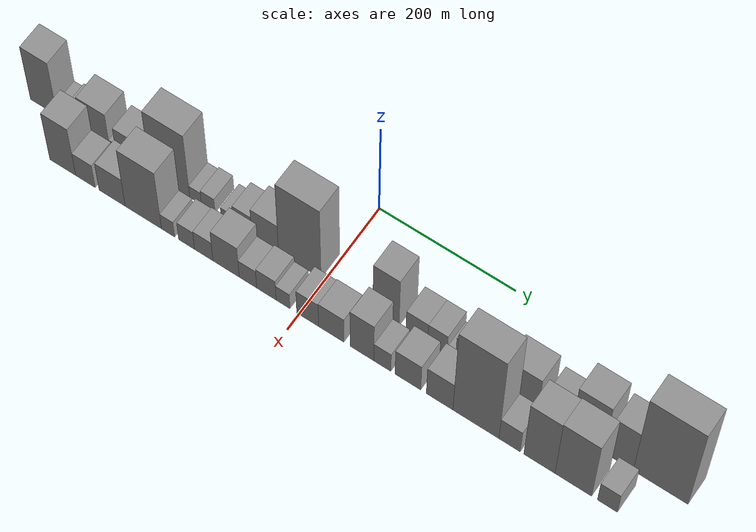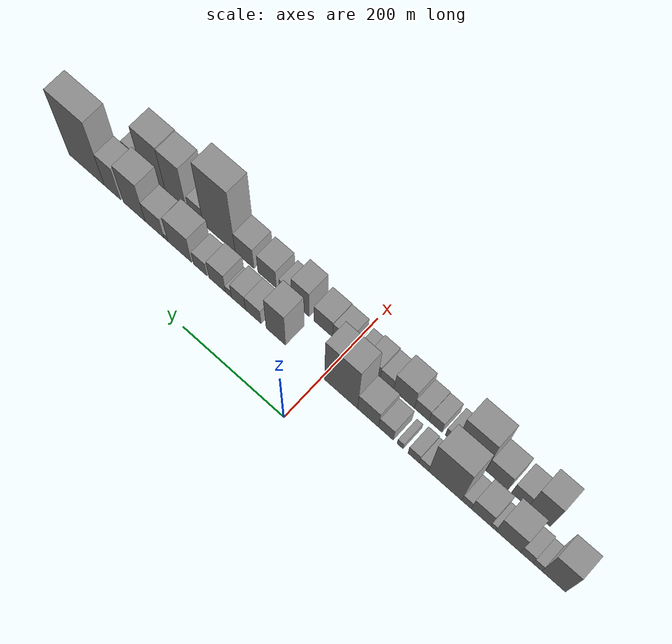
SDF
<sdf version="1.6">
 <world name="default">
  <scene>
   <sky><clouds><speed>12</speed></clouds></sky>
   <ambient>0.4 0.4 0.4 1</ambient>
   <background>0.7 0.7 0.7 1</background>
   <shadows>1</shadows>
  </scene>
  <gravity>0 0 -9.8066</gravity>
  <magnetic_field>6e-06 2.3e-05 -4.2e-05</magnetic_field>
  <physics default="0" name="default_physics" type="ode">
   <ode>
    <solver>
     <type>quick</type>
     <iters>10</iters>
     <sor>1.0</sor>
     <use_dynamic_moi_rescaling>0</use_dynamic_moi_rescaling>
    </solver>
    <constraints>
     <cfm>0</cfm>
     <erp>0.2</erp>
     <contact_max_correcting_vel>100</contact_max_correcting_vel>
     <contact_surface_layer>0.001</contact_surface_layer>
    </constraints>
   </ode>
   <max_step_size>0.004</max_step_size>
   <real_time_factor>1</real_time_factor>
   <real_time_update_rate>250</real_time_update_rate>
  </physics>
  <light name="sun" type="directional">
   <pose>0 0 10 0 0 0</pose>
   <diffuse>0.8 0.8 0.8 1</diffuse>
   <specular>0.2 0.2 0.2 1</specular>
   <attenuation>
    <range>1000</range>
    <constant>0.9</constant>
    <linear>0.01</linear>
    <quadratic>0.001</quadratic>
   </attenuation>
   <direction>-0.5 0.1 -0.9</direction>
  </light>
  <model name="building_1">
   <static>1</static>
   <pose>100.0000 -429.0224 0 0.000000 0.000000 0.000000</pose>
   <link name="link">
    <pose>0 0 64.50 0 0 0</pose>
    <collision name="collision"><geometry><box><size>40.0000 41.9551 129.0000</size></box></geometry></collision>
    <visual name="visual">
     <cast_shadows>0</cast_shadows>
     <geometry><box><size>40.0000 41.9551 129.0000</size></box></geometry>
     <material>
      <script>
       <uri>model://grey_wall/materials/scripts</uri>
       <uri>model://grey_wall/materials/textures</uri>
       <name>vrc/grey_wall</name>
      </script>
     </material>
    </visual>
   </link>
  </model>
  <model name="building_2">
   <static>1</static>
   <pose>100.0000 -399.9139 0 0.000000 0.000000 0.000000</pose>
   <link name="link">
    <pose>0 0 15.00 0 0 0</pose>
    <collision name="collision"><geometry><box><size>40.0000 16.2620 30.0000</size></box></geometry></collision>
    <visual name="visual">
     <cast_shadows>0</cast_shadows>
     <geometry><box><size>40.0000 16.2620 30.0000</size></box></geometry>
     <material>
      <script>
       <uri>model://grey_wall/materials/scripts</uri>
       <uri>model://grey_wall/materials/textures</uri>
       <name>vrc/grey_wall</name>
      </script>
     </material>
    </visual>
   </link>
  </model>
  <model name="building_3">
   <static>1</static>
   <pose>100.0000 -380.9201 0 0.000000 0.000000 0.000000</pose>
   <link name="link">
    <pose>0 0 19.50 0 0 0</pose>
    <collision name="collision"><geometry><box><size>40.0000 21.7257 39.0000</size></box></geometry></collision>
    <visual name="visual">
     <cast_shadows>0</cast_shadows>
     <geometry><box><size>40.0000 21.7257 39.0000</size></box></geometry>
     <material>
      <script>
       <uri>model://grey_wall/materials/scripts</uri>
       <uri>model://grey_wall/materials/textures</uri>
       <name>vrc/grey_wall</name>
      </script>
     </material>
    </visual>
   </link>
  </model>
  <model name="building_4">
   <static>1</static>
   <pose>100.0000 -347.9478 0 0.000000 0.000000 0.000000</pose>
   <link name="link">
    <pose>0 0 42.00 0 0 0</pose>
    <collision name="collision"><geometry><box><size>40.0000 44.2188 84.0000</size></box></geometry></collision>
    <visual name="visual">
     <cast_shadows>0</cast_shadows>
     <geometry><box><size>40.0000 44.2188 84.0000</size></box></geometry>
     <material>
      <script>
       <uri>model://grey_wall/materials/scripts</uri>
       <uri>model://grey_wall/materials/textures</uri>
       <name>vrc/grey_wall</name>
      </script>
     </material>
    </visual>
   </link>
  </model>
  <model name="building_5">
   <static>1</static>
   <pose>100.0000 -321.0881 0 0.000000 0.000000 0.000000</pose>
   <link name="link">
    <pose>0 0 10.50 0 0 0</pose>
    <collision name="collision"><geometry><box><size>40.0000 9.5005 21.0000</size></box></geometry></collision>
    <visual name="visual">
     <cast_shadows>0</cast_shadows>
     <geometry><box><size>40.0000 9.5005 21.0000</size></box></geometry>
     <material>
      <script>
       <uri>model://grey_wall/materials/scripts</uri>
       <uri>model://grey_wall/materials/textures</uri>
       <name>vrc/grey_wall</name>
      </script>
     </material>
    </visual>
   </link>
  </model>
  <model name="building_6">
   <static>1</static>
   <pose>100.0000 -298.5187 0 0.000000 0.000000 0.000000</pose>
   <link name="link">
    <pose>0 0 30.00 0 0 0</pose>
    <collision name="collision"><geometry><box><size>40.0000 35.6383 60.0000</size></box></geometry></collision>
    <visual name="visual">
     <cast_shadows>0</cast_shadows>
     <geometry><box><size>40.0000 35.6383 60.0000</size></box></geometry>
     <material>
      <script>
       <uri>model://grey_wall/materials/scripts</uri>
       <uri>model://grey_wall/materials/textures</uri>
       <name>vrc/grey_wall</name>
      </script>
     </material>
    </visual>
   </link>
  </model>
  <model name="building_7">
   <static>1</static>
   <pose>100.0000 -272.0576 0 0.000000 0.000000 0.000000</pose>
   <link name="link">
    <pose>0 0 16.50 0 0 0</pose>
    <collision name="collision"><geometry><box><size>40.0000 17.2840 33.0000</size></box></geometry></collision>
    <visual name="visual">
     <cast_shadows>0</cast_shadows>
     <geometry><box><size>40.0000 17.2840 33.0000</size></box></geometry>
     <material>
      <script>
       <uri>model://grey_wall/materials/scripts</uri>
       <uri>model://grey_wall/materials/textures</uri>
       <name>vrc/grey_wall</name>
      </script>
     </material>
    </visual>
   </link>
  </model>
  <model name="building_8">
   <static>1</static>
   <pose>100.0000 -233.0441 0 0.000000 0.000000 0.000000</pose>
   <link name="link">
    <pose>0 0 78.00 0 0 0</pose>
    <collision name="collision"><geometry><box><size>40.0000 60.7430 156.0000</size></box></geometry></collision>
    <visual name="visual">
     <cast_shadows>0</cast_shadows>
     <geometry><box><size>40.0000 60.7430 156.0000</size></box></geometry>
     <material>
      <script>
       <uri>model://grey_wall/materials/scripts</uri>
       <uri>model://grey_wall/materials/textures</uri>
       <name>vrc/grey_wall</name>
      </script>
     </material>
    </visual>
   </link>
  </model>
  <model name="building_9">
   <static>1</static>
   <pose>100.0000 -193.7756 0 0.000000 0.000000 0.000000</pose>
   <link name="link">
    <pose>0 0 15.00 0 0 0</pose>
    <collision name="collision"><geometry><box><size>40.0000 17.7942 30.0000</size></box></geometry></collision>
    <visual name="visual">
     <cast_shadows>0</cast_shadows>
     <geometry><box><size>40.0000 17.7942 30.0000</size></box></geometry>
     <material>
      <script>
       <uri>model://grey_wall/materials/scripts</uri>
       <uri>model://grey_wall/materials/textures</uri>
       <name>vrc/grey_wall</name>
      </script>
     </material>
    </visual>
   </link>
  </model>
  <model name="building_10">
   <static>1</static>
   <pose>100.0000 -174.4741 0 0.000000 0.000000 0.000000</pose>
   <link name="link">
    <pose>0 0 18.00 0 0 0</pose>
    <collision name="collision"><geometry><box><size>40.0000 20.8089 36.0000</size></box></geometry></collision>
    <visual name="visual">
     <cast_shadows>0</cast_shadows>
     <geometry><box><size>40.0000 20.8089 36.0000</size></box></geometry>
     <material>
      <script>
       <uri>model://grey_wall/materials/scripts</uri>
       <uri>model://grey_wall/materials/textures</uri>
       <name>vrc/grey_wall</name>
      </script>
     </material>
    </visual>
   </link>
  </model>
  <model name="building_11">
   <static>1</static>
   <pose>100.0000 -149.3201 0 0.000000 0.000000 0.000000</pose>
   <link name="link">
    <pose>0 0 12.00 0 0 0</pose>
    <collision name="collision"><geometry><box><size>40.0000 11.4991 24.0000</size></box></geometry></collision>
    <visual name="visual">
     <cast_shadows>0</cast_shadows>
     <geometry><box><size>40.0000 11.4991 24.0000</size></box></geometry>
     <material>
      <script>
       <uri>model://grey_wall/materials/scripts</uri>
       <uri>model://grey_wall/materials/textures</uri>
       <name>vrc/grey_wall</name>
      </script>
     </material>
    </visual>
   </link>
  </model>
  <model name="building_12">
   <static>1</static>
   <pose>100.0000 -122.6323 0 0.000000 0.000000 0.000000</pose>
   <link name="link">
    <pose>0 0 24.00 0 0 0</pose>
    <collision name="collision"><geometry><box><size>40.0000 27.8765 48.0000</size></box></geometry></collision>
    <visual name="visual">
     <cast_shadows>0</cast_shadows>
     <geometry><box><size>40.0000 27.8765 48.0000</size></box></geometry>
     <material>
      <script>
       <uri>model://grey_wall/materials/scripts</uri>
       <uri>model://grey_wall/materials/textures</uri>
       <name>vrc/grey_wall</name>
      </script>
     </material>
    </visual>
   </link>
  </model>
  <model name="building_13">
   <static>1</static>
   <pose>100.0000 -88.6389 0 0.000000 0.000000 0.000000</pose>
   <link name="link">
    <pose>0 0 34.50 0 0 0</pose>
    <collision name="collision"><geometry><box><size>40.0000 40.1102 69.0000</size></box></geometry></collision>
    <visual name="visual">
     <cast_shadows>0</cast_shadows>
     <geometry><box><size>40.0000 40.1102 69.0000</size></box></geometry>
     <material>
      <script>
       <uri>model://grey_wall/materials/scripts</uri>
       <uri>model://grey_wall/materials/textures</uri>
       <name>vrc/grey_wall</name>
      </script>
     </material>
    </visual>
   </link>
  </model>
  <model name="building_14">
   <static>1</static>
   <pose>100.0000 -36.8613 0 0.000000 0.000000 0.000000</pose>
   <link name="link">
    <pose>0 0 88.50 0 0 0</pose>
    <collision name="collision"><geometry><box><size>40.0000 63.4450 177.0000</size></box></geometry></collision>
    <visual name="visual">
     <cast_shadows>0</cast_shadows>
     <geometry><box><size>40.0000 63.4450 177.0000</size></box></geometry>
     <material>
      <script>
       <uri>model://grey_wall/materials/scripts</uri>
       <uri>model://grey_wall/materials/textures</uri>
       <name>vrc/grey_wall</name>
      </script>
     </material>
    </visual>
   </link>
  </model>
  <model name="building_15">
   <static>1</static>
   <pose>100.0000 90.2262 0 0.000000 0.000000 0.000000</pose>
   <link name="link">
    <pose>0 0 61.50 0 0 0</pose>
    <collision name="collision"><geometry><box><size>40.0000 38.2434 123.0000</size></box></geometry></collision>
    <visual name="visual">
     <cast_shadows>0</cast_shadows>
     <geometry><box><size>40.0000 38.2434 123.0000</size></box></geometry>
     <material>
      <script>
       <uri>model://grey_wall/materials/scripts</uri>
       <uri>model://grey_wall/materials/textures</uri>
       <name>vrc/grey_wall</name>
      </script>
     </material>
    </visual>
   </link>
  </model>
  <model name="building_16">
   <static>1</static>
   <pose>100.0000 135.0718 0 0.000000 0.000000 0.000000</pose>
   <link name="link">
    <pose>0 0 27.00 0 0 0</pose>
    <collision name="collision"><geometry><box><size>40.0000 31.4479 54.0000</size></box></geometry></collision>
    <visual name="visual">
     <cast_shadows>0</cast_shadows>
     <geometry><box><size>40.0000 31.4479 54.0000</size></box></geometry>
     <material>
      <script>
       <uri>model://grey_wall/materials/scripts</uri>
       <uri>model://grey_wall/materials/textures</uri>
       <name>vrc/grey_wall</name>
      </script>
     </material>
    </visual>
   </link>
  </model>
  <model name="building_17">
   <static>1</static>
   <pose>100.0000 164.8113 0 0.000000 0.000000 0.000000</pose>
   <link name="link">
    <pose>0 0 27.00 0 0 0</pose>
    <collision name="collision"><geometry><box><size>40.0000 28.0310 54.0000</size></box></geometry></collision>
    <visual name="visual">
     <cast_shadows>0</cast_shadows>
     <geometry><box><size>40.0000 28.0310 54.0000</size></box></geometry>
     <material>
      <script>
       <uri>model://grey_wall/materials/scripts</uri>
       <uri>model://grey_wall/materials/textures</uri>
       <name>vrc/grey_wall</name>
      </script>
     </material>
    </visual>
   </link>
  </model>
  <model name="building_18">
   <static>1</static>
   <pose>100.0000 184.7868 0 0.000000 0.000000 0.000000</pose>
   <link name="link">
    <pose>0 0 13.50 0 0 0</pose>
    <collision name="collision"><geometry><box><size>40.0000 11.9201 27.0000</size></box></geometry></collision>
    <visual name="visual">
     <cast_shadows>0</cast_shadows>
     <geometry><box><size>40.0000 11.9201 27.0000</size></box></geometry>
     <material>
      <script>
       <uri>model://grey_wall/materials/scripts</uri>
       <uri>model://grey_wall/materials/textures</uri>
       <name>vrc/grey_wall</name>
      </script>
     </material>
    </visual>
   </link>
  </model>
  <model name="building_19">
   <static>1</static>
   <pose>100.0000 207.5900 0 0.000000 0.000000 0.000000</pose>
   <link name="link">
    <pose>0 0 33.00 0 0 0</pose>
    <collision name="collision"><geometry><box><size>40.0000 33.6863 66.0000</size></box></geometry></collision>
    <visual name="visual">
     <cast_shadows>0</cast_shadows>
     <geometry><box><size>40.0000 33.6863 66.0000</size></box></geometry>
     <material>
      <script>
       <uri>model://grey_wall/materials/scripts</uri>
       <uri>model://grey_wall/materials/textures</uri>
       <name>vrc/grey_wall</name>
      </script>
     </material>
    </visual>
   </link>
  </model>
  <model name="building_20">
   <static>1</static>
   <pose>100.0000 242.2417 0 0.000000 0.000000 0.000000</pose>
   <link name="link">
    <pose>0 0 24.00 0 0 0</pose>
    <collision name="collision"><geometry><box><size>40.0000 27.6171 48.0000</size></box></geometry></collision>
    <visual name="visual">
     <cast_shadows>0</cast_shadows>
     <geometry><box><size>40.0000 27.6171 48.0000</size></box></geometry>
     <material>
      <script>
       <uri>model://grey_wall/materials/scripts</uri>
       <uri>model://grey_wall/materials/textures</uri>
       <name>vrc/grey_wall</name>
      </script>
     </material>
    </visual>
   </link>
  </model>
  <model name="building_21">
   <static>1</static>
   <pose>100.0000 284.5589 0 0.000000 0.000000 0.000000</pose>
   <link name="link">
    <pose>0 0 45.00 0 0 0</pose>
    <collision name="collision"><geometry><box><size>40.0000 49.0174 90.0000</size></box></geometry></collision>
    <visual name="visual">
     <cast_shadows>0</cast_shadows>
     <geometry><box><size>40.0000 49.0174 90.0000</size></box></geometry>
     <material>
      <script>
       <uri>model://grey_wall/materials/scripts</uri>
       <uri>model://grey_wall/materials/textures</uri>
       <name>vrc/grey_wall</name>
      </script>
     </material>
    </visual>
   </link>
  </model>
  <model name="building_22">
   <static>1</static>
   <pose>100.0000 313.1219 0 0.000000 0.000000 0.000000</pose>
   <link name="link">
    <pose>0 0 9.00 0 0 0</pose>
    <collision name="collision"><geometry><box><size>40.0000 8.1085 18.0000</size></box></geometry></collision>
    <visual name="visual">
     <cast_shadows>0</cast_shadows>
     <geometry><box><size>40.0000 8.1085 18.0000</size></box></geometry>
     <material>
      <script>
       <uri>model://grey_wall/materials/scripts</uri>
       <uri>model://grey_wall/materials/textures</uri>
       <name>vrc/grey_wall</name>
      </script>
     </material>
    </visual>
   </link>
  </model>
  <model name="building_23">
   <static>1</static>
   <pose>100.0000 336.5425 0 0.000000 0.000000 0.000000</pose>
   <link name="link">
    <pose>0 0 34.50 0 0 0</pose>
    <collision name="collision"><geometry><box><size>40.0000 38.7327 69.0000</size></box></geometry></collision>
    <visual name="visual">
     <cast_shadows>0</cast_shadows>
     <geometry><box><size>40.0000 38.7327 69.0000</size></box></geometry>
     <material>
      <script>
       <uri>model://grey_wall/materials/scripts</uri>
       <uri>model://grey_wall/materials/textures</uri>
       <name>vrc/grey_wall</name>
      </script>
     </material>
    </visual>
   </link>
  </model>
  <model name="building_24">
   <static>1</static>
   <pose>100.0000 378.7591 0 0.000000 0.000000 0.000000</pose>
   <link name="link">
    <pose>0 0 64.50 0 0 0</pose>
    <collision name="collision"><geometry><box><size>40.0000 45.7005 129.0000</size></box></geometry></collision>
    <visual name="visual">
     <cast_shadows>0</cast_shadows>
     <geometry><box><size>40.0000 45.7005 129.0000</size></box></geometry>
     <material>
      <script>
       <uri>model://grey_wall/materials/scripts</uri>
       <uri>model://grey_wall/materials/textures</uri>
       <name>vrc/grey_wall</name>
      </script>
     </material>
    </visual>
   </link>
  </model>
  <model name="building_25">
   <static>1</static>
   <pose>100.0000 424.7427 0 0.000000 0.000000 0.000000</pose>
   <link name="link">
    <pose>0 0 54.00 0 0 0</pose>
    <collision name="collision"><geometry><box><size>40.0000 34.2668 108.0000</size></box></geometry></collision>
    <visual name="visual">
     <cast_shadows>0</cast_shadows>
     <geometry><box><size>40.0000 34.2668 108.0000</size></box></geometry>
     <material>
      <script>
       <uri>model://grey_wall/materials/scripts</uri>
       <uri>model://grey_wall/materials/textures</uri>
       <name>vrc/grey_wall</name>
      </script>
     </material>
    </visual>
   </link>
  </model>
  <model name="building_26">
   <static>1</static>
   <pose>100.0000 479.6796 0 0.000000 0.000000 0.000000</pose>
   <link name="link">
    <pose>0 0 103.50 0 0 0</pose>
    <collision name="collision"><geometry><box><size>40.0000 75.6070 207.0000</size></box></geometry></collision>
    <visual name="visual">
     <cast_shadows>0</cast_shadows>
     <geometry><box><size>40.0000 75.6070 207.0000</size></box></geometry>
     <material>
      <script>
       <uri>model://grey_wall/materials/scripts</uri>
       <uri>model://grey_wall/materials/textures</uri>
       <name>vrc/grey_wall</name>
      </script>
     </material>
    </visual>
   </link>
  </model>
  <model name="building_27">
   <static>1</static>
   <pose>155.0000 -357.7235 0 0.000000 0.000000 0.000000</pose>
   <link name="link">
    <pose>0 0 58.50 0 0 0</pose>
    <collision name="collision"><geometry><box><size>40.0000 40.1843 117.0000</size></box></geometry></collision>
    <visual name="visual">
     <cast_shadows>0</cast_shadows>
     <geometry><box><size>40.0000 40.1843 117.0000</size></box></geometry>
     <material>
      <script>
       <uri>model://grey_wall/materials/scripts</uri>
       <uri>model://grey_wall/materials/textures</uri>
       <name>vrc/grey_wall</name>
      </script>
     </material>
    </visual>
   </link>
  </model>
  <model name="building_28">
   <static>1</static>
   <pose>155.0000 -322.5535 0 0.000000 0.000000 0.000000</pose>
   <link name="link">
    <pose>0 0 28.50 0 0 0</pose>
    <collision name="collision"><geometry><box><size>40.0000 30.1557 57.0000</size></box></geometry></collision>
    <visual name="visual">
     <cast_shadows>0</cast_shadows>
     <geometry><box><size>40.0000 30.1557 57.0000</size></box></geometry>
     <material>
      <script>
       <uri>model://grey_wall/materials/scripts</uri>
       <uri>model://grey_wall/materials/textures</uri>
       <name>vrc/grey_wall</name>
      </script>
     </material>
    </visual>
   </link>
  </model>
  <model name="building_29">
   <static>1</static>
   <pose>155.0000 -281.3370 0 0.000000 0.000000 0.000000</pose>
   <link name="link">
    <pose>0 0 34.50 0 0 0</pose>
    <collision name="collision"><geometry><box><size>40.0000 40.2775 69.0000</size></box></geometry></collision>
    <visual name="visual">
     <cast_shadows>0</cast_shadows>
     <geometry><box><size>40.0000 40.2775 69.0000</size></box></geometry>
     <material>
      <script>
       <uri>model://grey_wall/materials/scripts</uri>
       <uri>model://grey_wall/materials/textures</uri>
       <name>vrc/grey_wall</name>
      </script>
     </material>
    </visual>
   </link>
  </model>
  <model name="building_30">
   <static>1</static>
   <pose>155.0000 -233.5182 0 0.000000 0.000000 0.000000</pose>
   <link name="link">
    <pose>0 0 72.00 0 0 0</pose>
    <collision name="collision"><geometry><box><size>40.0000 55.3600 144.0000</size></box></geometry></collision>
    <visual name="visual">
     <cast_shadows>0</cast_shadows>
     <geometry><box><size>40.0000 55.3600 144.0000</size></box></geometry>
     <material>
      <script>
       <uri>model://grey_wall/materials/scripts</uri>
       <uri>model://grey_wall/materials/textures</uri>
       <name>vrc/grey_wall</name>
      </script>
     </material>
    </visual>
   </link>
  </model>
  <model name="building_31">
   <static>1</static>
   <pose>155.0000 -195.7968 0 0.000000 0.000000 0.000000</pose>
   <link name="link">
    <pose>0 0 19.50 0 0 0</pose>
    <collision name="collision"><geometry><box><size>40.0000 20.0828 39.0000</size></box></geometry></collision>
    <visual name="visual">
     <cast_shadows>0</cast_shadows>
     <geometry><box><size>40.0000 20.0828 39.0000</size></box></geometry>
     <material>
      <script>
       <uri>model://grey_wall/materials/scripts</uri>
       <uri>model://grey_wall/materials/textures</uri>
       <name>vrc/grey_wall</name>
      </script>
     </material>
    </visual>
   </link>
  </model>
  <model name="building_32">
   <static>1</static>
   <pose>155.0000 -167.7572 0 0.000000 0.000000 0.000000</pose>
   <link name="link">
    <pose>0 0 22.50 0 0 0</pose>
    <collision name="collision"><geometry><box><size>40.0000 23.9965 45.0000</size></box></geometry></collision>
    <visual name="visual">
     <cast_shadows>0</cast_shadows>
     <geometry><box><size>40.0000 23.9965 45.0000</size></box></geometry>
     <material>
      <script>
       <uri>model://grey_wall/materials/scripts</uri>
       <uri>model://grey_wall/materials/textures</uri>
       <name>vrc/grey_wall</name>
      </script>
     </material>
    </visual>
   </link>
  </model>
  <model name="building_33">
   <static>1</static>
   <pose>155.0000 -141.8933 0 0.000000 0.000000 0.000000</pose>
   <link name="link">
    <pose>0 0 24.00 0 0 0</pose>
    <collision name="collision"><geometry><box><size>40.0000 27.7312 48.0000</size></box></geometry></collision>
    <visual name="visual">
     <cast_shadows>0</cast_shadows>
     <geometry><box><size>40.0000 27.7312 48.0000</size></box></geometry>
     <material>
      <script>
       <uri>model://grey_wall/materials/scripts</uri>
       <uri>model://grey_wall/materials/textures</uri>
       <name>vrc/grey_wall</name>
      </script>
     </material>
    </visual>
   </link>
  </model>
  <model name="building_34">
   <static>1</static>
   <pose>155.0000 -108.2997 0 0.000000 0.000000 0.000000</pose>
   <link name="link">
    <pose>0 0 39.00 0 0 0</pose>
    <collision name="collision"><geometry><box><size>40.0000 39.4560 78.0000</size></box></geometry></collision>
    <visual name="visual">
     <cast_shadows>0</cast_shadows>
     <geometry><box><size>40.0000 39.4560 78.0000</size></box></geometry>
     <material>
      <script>
       <uri>model://grey_wall/materials/scripts</uri>
       <uri>model://grey_wall/materials/textures</uri>
       <name>vrc/grey_wall</name>
      </script>
     </material>
    </visual>
   </link>
  </model>
  <model name="building_35">
   <static>1</static>
   <pose>155.0000 -75.5645 0 0.000000 0.000000 0.000000</pose>
   <link name="link">
    <pose>0 0 22.50 0 0 0</pose>
    <collision name="collision"><geometry><box><size>40.0000 26.0145 45.0000</size></box></geometry></collision>
    <visual name="visual">
     <cast_shadows>0</cast_shadows>
     <geometry><box><size>40.0000 26.0145 45.0000</size></box></geometry>
     <material>
      <script>
       <uri>model://grey_wall/materials/scripts</uri>
       <uri>model://grey_wall/materials/textures</uri>
       <name>vrc/grey_wall</name>
      </script>
     </material>
    </visual>
   </link>
  </model>
  <model name="building_36">
   <static>1</static>
   <pose>155.0000 -48.0627 0 0.000000 0.000000 0.000000</pose>
   <link name="link">
    <pose>0 0 25.50 0 0 0</pose>
    <collision name="collision"><geometry><box><size>40.0000 28.9891 51.0000</size></box></geometry></collision>
    <visual name="visual">
     <cast_shadows>0</cast_shadows>
     <geometry><box><size>40.0000 28.9891 51.0000</size></box></geometry>
     <material>
      <script>
       <uri>model://grey_wall/materials/scripts</uri>
       <uri>model://grey_wall/materials/textures</uri>
       <name>vrc/grey_wall</name>
      </script>
     </material>
    </visual>
   </link>
  </model>
  <model name="building_37">
   <static>1</static>
   <pose>155.0000 -23.3141 0 0.000000 0.000000 0.000000</pose>
   <link name="link">
    <pose>0 0 19.50 0 0 0</pose>
    <collision name="collision"><geometry><box><size>40.0000 20.5080 39.0000</size></box></geometry></collision>
    <visual name="visual">
     <cast_shadows>0</cast_shadows>
     <geometry><box><size>40.0000 20.5080 39.0000</size></box></geometry>
     <material>
      <script>
       <uri>model://grey_wall/materials/scripts</uri>
       <uri>model://grey_wall/materials/textures</uri>
       <name>vrc/grey_wall</name>
      </script>
     </material>
    </visual>
   </link>
  </model>
  <model name="building_38">
   <static>1</static>
   <pose>155.0000 13.0058 0 0.000000 0.000000 0.000000</pose>
   <link name="link">
    <pose>0 0 30.00 0 0 0</pose>
    <collision name="collision"><geometry><box><size>40.0000 32.1319 60.0000</size></box></geometry></collision>
    <visual name="visual">
     <cast_shadows>0</cast_shadows>
     <geometry><box><size>40.0000 32.1319 60.0000</size></box></geometry>
     <material>
      <script>
       <uri>model://grey_wall/materials/scripts</uri>
       <uri>model://grey_wall/materials/textures</uri>
       <name>vrc/grey_wall</name>
      </script>
     </material>
    </visual>
   </link>
  </model>
  <model name="building_39">
   <static>1</static>
   <pose>155.0000 47.6508 0 0.000000 0.000000 0.000000</pose>
   <link name="link">
    <pose>0 0 31.50 0 0 0</pose>
    <collision name="collision"><geometry><box><size>40.0000 37.1580 63.0000</size></box></geometry></collision>
    <visual name="visual">
     <cast_shadows>0</cast_shadows>
     <geometry><box><size>40.0000 37.1580 63.0000</size></box></geometry>
     <material>
      <script>
       <uri>model://grey_wall/materials/scripts</uri>
       <uri>model://grey_wall/materials/textures</uri>
       <name>vrc/grey_wall</name>
      </script>
     </material>
    </visual>
   </link>
  </model>
  <model name="building_40">
   <static>1</static>
   <pose>155.0000 92.5274 0 0.000000 0.000000 0.000000</pose>
   <link name="link">
    <pose>0 0 48.00 0 0 0</pose>
    <collision name="collision"><geometry><box><size>40.0000 34.5951 96.0000</size></box></geometry></collision>
    <visual name="visual">
     <cast_shadows>0</cast_shadows>
     <geometry><box><size>40.0000 34.5951 96.0000</size></box></geometry>
     <material>
      <script>
       <uri>model://grey_wall/materials/scripts</uri>
       <uri>model://grey_wall/materials/textures</uri>
       <name>vrc/grey_wall</name>
      </script>
     </material>
    </visual>
   </link>
  </model>
  <model name="building_41">
   <static>1</static>
   <pose>155.0000 122.1438 0 0.000000 0.000000 0.000000</pose>
   <link name="link">
    <pose>0 0 24.00 0 0 0</pose>
    <collision name="collision"><geometry><box><size>40.0000 24.6377 48.0000</size></box></geometry></collision>
    <visual name="visual">
     <cast_shadows>0</cast_shadows>
     <geometry><box><size>40.0000 24.6377 48.0000</size></box></geometry>
     <material>
      <script>
       <uri>model://grey_wall/materials/scripts</uri>
       <uri>model://grey_wall/materials/textures</uri>
       <name>vrc/grey_wall</name>
      </script>
     </material>
    </visual>
   </link>
  </model>
  <model name="building_42">
   <static>1</static>
   <pose>155.0000 158.9958 0 0.000000 0.000000 0.000000</pose>
   <link name="link">
    <pose>0 0 33.00 0 0 0</pose>
    <collision name="collision"><geometry><box><size>40.0000 37.0665 66.0000</size></box></geometry></collision>
    <visual name="visual">
     <cast_shadows>0</cast_shadows>
     <geometry><box><size>40.0000 37.0665 66.0000</size></box></geometry>
     <material>
      <script>
       <uri>model://grey_wall/materials/scripts</uri>
       <uri>model://grey_wall/materials/textures</uri>
       <name>vrc/grey_wall</name>
      </script>
     </material>
    </visual>
   </link>
  </model>
  <model name="building_43">
   <static>1</static>
   <pose>155.0000 204.5790 0 0.000000 0.000000 0.000000</pose>
   <link name="link">
    <pose>0 0 36.00 0 0 0</pose>
    <collision name="collision"><geometry><box><size>40.0000 38.0998 72.0000</size></box></geometry></collision>
    <visual name="visual">
     <cast_shadows>0</cast_shadows>
     <geometry><box><size>40.0000 38.0998 72.0000</size></box></geometry>
     <material>
      <script>
       <uri>model://grey_wall/materials/scripts</uri>
       <uri>model://grey_wall/materials/textures</uri>
       <name>vrc/grey_wall</name>
      </script>
     </material>
    </visual>
   </link>
  </model>
  <model name="building_44">
   <static>1</static>
   <pose>155.0000 256.3442 0 0.000000 0.000000 0.000000</pose>
   <link name="link">
    <pose>0 0 108.00 0 0 0</pose>
    <collision name="collision"><geometry><box><size>40.0000 65.4306 216.0000</size></box></geometry></collision>
    <visual name="visual">
     <cast_shadows>0</cast_shadows>
     <geometry><box><size>40.0000 65.4306 216.0000</size></box></geometry>
     <material>
      <script>
       <uri>model://grey_wall/materials/scripts</uri>
       <uri>model://grey_wall/materials/textures</uri>
       <name>vrc/grey_wall</name>
      </script>
     </material>
    </visual>
   </link>
  </model>
  <model name="building_45">
   <static>1</static>
   <pose>155.0000 304.0466 0 0.000000 0.000000 0.000000</pose>
   <link name="link">
    <pose>0 0 28.50 0 0 0</pose>
    <collision name="collision"><geometry><box><size>40.0000 29.9741 57.0000</size></box></geometry></collision>
    <visual name="visual">
     <cast_shadows>0</cast_shadows>
     <geometry><box><size>40.0000 29.9741 57.0000</size></box></geometry>
     <material>
      <script>
       <uri>model://grey_wall/materials/scripts</uri>
       <uri>model://grey_wall/materials/textures</uri>
       <name>vrc/grey_wall</name>
      </script>
     </material>
    </visual>
   </link>
  </model>
  <model name="building_46">
   <static>1</static>
   <pose>155.0000 345.9192 0 0.000000 0.000000 0.000000</pose>
   <link name="link">
    <pose>0 0 72.00 0 0 0</pose>
    <collision name="collision"><geometry><box><size>40.0000 43.7710 144.0000</size></box></geometry></collision>
    <visual name="visual">
     <cast_shadows>0</cast_shadows>
     <geometry><box><size>40.0000 43.7710 144.0000</size></box></geometry>
     <material>
      <script>
       <uri>model://grey_wall/materials/scripts</uri>
       <uri>model://grey_wall/materials/textures</uri>
       <name>vrc/grey_wall</name>
      </script>
     </material>
    </visual>
   </link>
  </model>
  <model name="building_47">
   <static>1</static>
   <pose>155.0000 393.2591 0 0.000000 0.000000 0.000000</pose>
   <link name="link">
    <pose>0 0 73.50 0 0 0</pose>
    <collision name="collision"><geometry><box><size>40.0000 50.9088 147.0000</size></box></geometry></collision>
    <visual name="visual">
     <cast_shadows>0</cast_shadows>
     <geometry><box><size>40.0000 50.9088 147.0000</size></box></geometry>
     <material>
      <script>
       <uri>model://grey_wall/materials/scripts</uri>
       <uri>model://grey_wall/materials/textures</uri>
       <name>vrc/grey_wall</name>
      </script>
     </material>
    </visual>
   </link>
  </model>
  <model name="building_48">
   <static>1</static>
   <pose>155.0000 440.5252 0 0.000000 0.000000 0.000000</pose>
   <link name="link">
    <pose>0 0 25.50 0 0 0</pose>
    <collision name="collision"><geometry><box><size>40.0000 27.6233 51.0000</size></box></geometry></collision>
    <visual name="visual">
     <cast_shadows>0</cast_shadows>
     <geometry><box><size>40.0000 27.6233 51.0000</size></box></geometry>
     <material>
      <script>
       <uri>model://grey_wall/materials/scripts</uri>
       <uri>model://grey_wall/materials/textures</uri>
       <name>vrc/grey_wall</name>
      </script>
     </material>
    </visual>
   </link>
  </model>
 </world>
</sdf>
